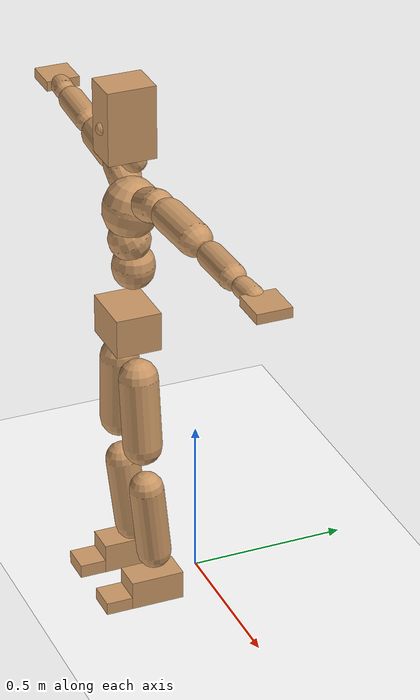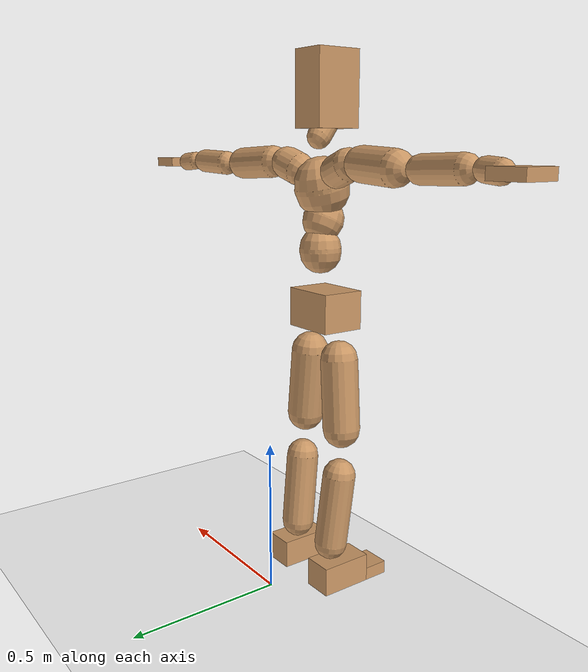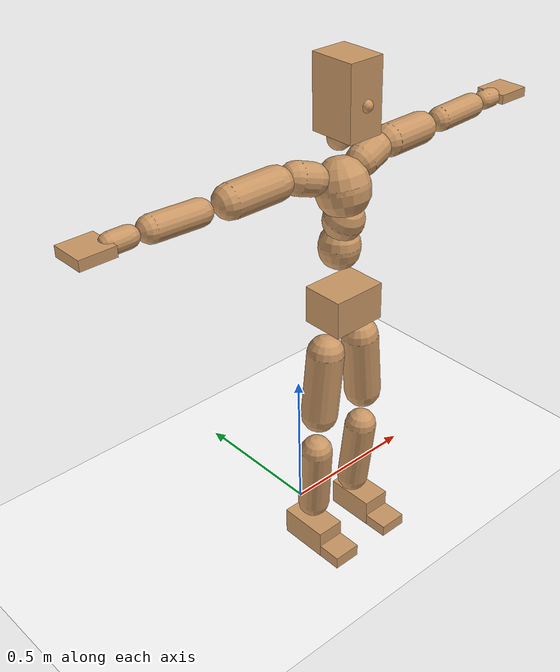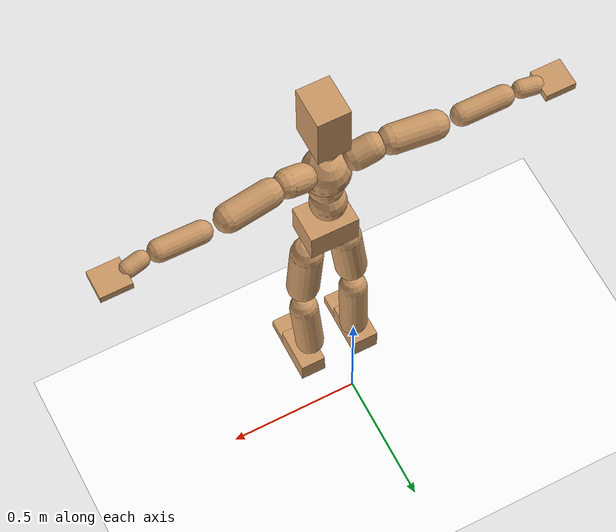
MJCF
<mujoco model="humanoid">
  <option integrator="implicitfast" />

  <visual>
    <global offwidth="1280" offheight="960" />
    <headlight active="1" ambient="0.34 0.34 0.34" diffuse="0.5 0.5 0.5" />
  </visual>

  <default>
    <joint damping="2" stiffness="2" armature="0.01" limited="true" solimplimit="0 .99 .01" />
    <geom condim="1" friction="0.7 0.005 0.0001" solimp=".99 .99 .003" solref="0.015 1" margin="0.001" rgba="0.8 0.6 .4 1" />
    <default class="smplcontact">
      <geom condim="3" friction="1. 0.005 0.0001" solref="0.015 1" solimp="0.98 0.98 0.001" priority="1" />
    </default>
    <default class="stiff_medium">
      <joint stiffness="10" />
    </default>
    <default class="stiff_medium_higher">
      <joint stiffness="50" />
    </default>
    <default class="stiff_high">
      <joint stiffness="100" />
    </default>
  </default>

  <asset>
    <texture type="skybox" builtin="gradient" rgb1="0.99 0.99 0.99" rgb2="0.608 0.828 0.892" width="100" />
    <texture builtin="flat" height="1278" mark="cross" markrgb="1 1 1" name="texgeom" random="0.01" rgb1="0.8 0.6 0.4" rgb2="0.8 0.6 0.4" type="cube" width="127" />
    <texture name="texplane" type="2d" builtin="checker" markrgb="1 1 1" rgb1="0.756 0.772 0.76" rgb2="0.6 0.6 0.6" width="100" height="100" />
    <material name="MatPlane" reflectance="0.5" texture="texplane" texrepeat="1 1" texuniform="true" />
    <material name="geom" texture="texgeom" texuniform="true" />
  </asset>

  <worldbody>
    <light name="tracking_light" pos="0 0 7" dir="0 0 -1" directional="true" cutoff="100" exponent="1" diffuse="1 1 1" specular="0.1 0.1 0.1" mode="trackcom" />
    <camera name="back" pos="0 3 2.4" xyaxes="-1 0 0 0 -1 2" mode="trackcom" />
    <camera name="side" pos="-3 0 2.4" xyaxes="0 -1 0 1 0 2" mode="trackcom" />
    <camera name="front_side" pos="-2.8 -2.8 0.8" xyaxes="0.5 -0.5 0 0.1 0.1 1" mode="trackcom" />
    <geom condim="3" name="floor" pos="0 0 0" rgba="1 1 1 1" size="100 100 .2" type="plane" material="MatPlane" />
    <body name="Pelvis" pos="-0.0018 -0.2233 0.9367" euler="90 0 0">
      <site name="Pelvis" size="0.01" />
      <freejoint name="Pelvis" />
      <geom type="box" pos="-0.0000 -0.0121 -0.0055" size="0.0924685 0.062453 0.071795" quat="1.0000 0.0000 0.0000 0.0000" density="3165.830099" name="Pelvis" />
      <body name="L_Hip" pos="0.0695 -0.0914 -0.0068">
        <joint name="L_Hip_x" type="hinge" pos="0 0 0" axis="1 0 0" stiffness="10.0" range="-160.0 22.92" class="stiff_medium" damping="14.999999999999998" armature="0.009999999999999998"/>
        <joint name="L_Hip_y" type="hinge" pos="0 0 0" axis="0 1 0" stiffness="10.0" range="-70.0 70.0" class="stiff_medium" damping="10.000000000000002" armature="0.010000000000000005"/>
        <joint name="L_Hip_z" type="hinge" pos="0 0 0" axis="0 0 1" stiffness="10.0" range="-28.65 90.0" class="stiff_medium" damping="9.999999999999998" armature="0.009999999999999997"/>
        <geom type="capsule" density="2040.816327" fromto="0.0069 -0.075 -0.0009 0.0274 -0.3002 -0.0036" size="0.0615" name="L_Hip" />
        <body name="L_Knee" pos="0.0343 -0.3752 -0.0045">
          <joint name="L_Knee_x" type="hinge" pos="0 0 0" axis="1 0 0" range="-5.16 171.89" damping="8.000000000000002" armature="0.010000000000000005" stiffness="2.0"/>
          <joint name="L_Knee_y" type="hinge" pos="0 0 0" axis="0 1 0" range="-4.58 6.88" damping="8.000000000000002" armature="0.010000000000000005" stiffness="2.0"/>
          <joint name="L_Knee_z" type="hinge" pos="0 0 0" axis="0 0 1" range="-6.88 4.58" damping="7.999999999999999" armature="0.009999999999999998" stiffness="2.0"/>
          <geom type="capsule" density="1234.567901" fromto="-0.0027 -0.0796 -0.0087 -0.0109 -0.3184 -0.035" size="0.0541" name="L_Knee" />
          <body name="L_Ankle" pos="-0.0136 -0.398 -0.0437">
            <joint name="L_Ankle_x" type="hinge" pos="0 0 0" axis="1 0 0" range="-45.84 45.84" class="stiff_medium" damping="6.000000000000072" armature="0.01000000000000024" stiffness="10.0"/>
            <joint name="L_Ankle_y" type="hinge" pos="0 0 0" axis="0 1 0" range="-74.48 22.92" class="stiff_medium" damping="3.000000000000001" armature="0.010000000000000005" stiffness="10.0"/>
            <joint name="L_Ankle_z" type="hinge" pos="0 0 0" axis="0 0 1" range="-4.58 4.58" class="stiff_medium" damping="6.000000000000163" armature="0.010000000000000547" stiffness="10.0"/>
            <geom type="box" pos="0.0233 -0.0239 0.0242" size="0.0483 0.0464 0.085" quat="1.0000 0.0000 0.0000 0.0000" density="449.071558" name="L_Ankle" class="smplcontact" />
            <body name="L_Toe" pos="0.0264 -0.0558 0.1193">
              <joint name="L_Toe_x" type="hinge" pos="0 0 0" axis="1 0 0" range="-91.67 22.92" armature="0.009999999999998635" damping="1.9999999999998634" stiffness="2.0"/>
              <joint name="L_Toe_y" type="hinge" pos="0 0 0" axis="0 1 0" range="-4.58 4.58" armature="0.009999999999999976" damping="1.9999999999999976" stiffness="2.0"/>
              <joint name="L_Toe_z" type="hinge" pos="0 0 0" axis="0 0 1" range="-4.58 4.58" armature="0.009999999999997629" damping="1.9999999999997629" stiffness="2.0"/>
              <geom type="box" pos="-0.003 0.0055 0.0248" size="0.0478 0.02 0.0496" quat="1.0000 0.0000 0.0000 0.0000" density="423.206892" name="L_Toe" class="smplcontact" />
            </body>
          </body>
        </body>
      </body>
      <body name="R_Hip" pos="-0.0677 -0.0905 -0.0043">
        <joint name="R_Hip_x" type="hinge" pos="0 0 0" axis="1 0 0" stiffness="10.0" range="-160.0 22.92" class="stiff_medium" damping="14.999999999999998" armature="0.009999999999999998"/>
        <joint name="R_Hip_y" type="hinge" pos="0 0 0" axis="0 1 0" stiffness="10.0" range="-70.0 70.0" class="stiff_medium" damping="10.000000000000002" armature="0.010000000000000005"/>
        <joint name="R_Hip_z" type="hinge" pos="0 0 0" axis="0 0 1" stiffness="10.0" range="-90.0 28.65" class="stiff_medium" damping="9.999999999999998" armature="0.009999999999999997"/>
        <geom type="capsule" density="2040.816327" fromto="-0.0077 -0.0765 -0.0018 -0.0306 -0.3061 -0.0071" size="0.0606" name="R_Hip" />
        <body name="R_Knee" pos="-0.0383 -0.3826 -0.0089">
          <joint name="R_Knee_x" type="hinge" pos="0 0 0" axis="1 0 0" range="-5.16 171.89" damping="8.000000000000002" armature="0.010000000000000005" stiffness="2.0"/>
          <joint name="R_Knee_y" type="hinge" pos="0 0 0" axis="0 1 0" range="-6.88 4.58" damping="8.000000000000002" armature="0.010000000000000005" stiffness="2.0"/>
          <joint name="R_Knee_z" type="hinge" pos="0 0 0" axis="0 0 1" range="-4.58 6.88" damping="7.999999999999999" armature="0.009999999999999998" stiffness="2.0"/>
          <geom type="capsule" density="1234.567901" fromto="0.0032 -0.0797 -0.0085 0.0126 -0.3187 -0.0338" size="0.0541" name="R_Knee" />
          <body name="R_Ankle" pos="0.0158 -0.3984 -0.0423">
            <joint name="R_Ankle_x" type="hinge" pos="0 0 0" axis="1 0 0" range="-45.84 45.84" class="stiff_medium" damping="6.000000000000072" armature="0.01000000000000024" stiffness="10.0"/>
            <joint name="R_Ankle_y" type="hinge" pos="0 0 0" axis="0 1 0" range="-22.92 74.48" class="stiff_medium" damping="3.000000000000001" armature="0.010000000000000005" stiffness="10.0"/>
            <joint name="R_Ankle_z" type="hinge" pos="0 0 0" axis="0 0 1" range="-4.58 4.58" class="stiff_medium" damping="6.000000000000163" armature="0.010000000000000547" stiffness="10.0"/>
            <geom type="box" pos="-0.0212 -0.0174 0.0256" size="0.0483 0.0478 0.0865" quat="1.0000 0.0000 0.0000 0.0000" density="434.700981" name="R_Ankle" class="smplcontact" />
            <body name="R_Toe" pos="-0.0254 -0.0481 0.1233">
              <joint name="R_Toe_x" type="hinge" pos="0 0 0" axis="1 0 0" range="-91.67 22.92" armature="0.009999999999998635" damping="1.9999999999998634" stiffness="2.0"/>
              <joint name="R_Toe_y" type="hinge" pos="0 0 0" axis="0 1 0" range="-4.58 4.58" armature="0.009999999999999976" damping="1.9999999999999976" stiffness="2.0"/>
              <joint name="R_Toe_z" type="hinge" pos="0 0 0" axis="0 0 1" range="-4.58 4.58" armature="0.009999999999997629" damping="1.9999999999997629" stiffness="2.0"/>
              <geom type="box" pos="0.0042 0.0045 0.0227" size="0.0479 0.0216 0.0493" quat="1.0000 0.0000 0.0000 0.0000" density="407.384095" name="R_Toe" class="smplcontact" />
            </body>
          </body>
        </body>
      </body>
      <body name="Torso" pos="-0.0025 0.109 -0.0267">
        <joint name="Torso_x" type="hinge" pos="0 0 0" axis="1 0 0" range="-25.78 57.3" class="stiff_medium" damping="13.215959636474029" armature="0.008983373766355034" stiffness="8.64122711111111"/>
        <joint name="Torso_y" type="hinge" pos="0 0 0" axis="0 1 0" range="-57.3 57.3" class="stiff_high" damping="18.33844823546142" armature="0.009818205557698583" stiffness="85.63140222222223"/>
        <joint name="Torso_z" type="hinge" pos="0 0 0" axis="0 0 1" range="-34.38 34.38" class="stiff_high" damping="17.620277561194307" armature="0.009311548997657189" stiffness="83.35728604651163"/>
        <geom type="capsule" density="2040.816327" fromto="0.0025 0.0608 0.0005 0.003 0.0743 0.0006" size="0.0665185" name="Torso" />
        <body name="Spine" pos="0.0055 0.1352 0.0011">
          <joint name="Spine_x" type="hinge" pos="0 0 0" axis="1 0 0" stiffness="8.874952666666667" range="-25.78 57.3" class="stiff_medium" damping="13.629979113894215" armature="0.009303402639502906"/>
          <joint name="Spine_y" type="hinge" pos="0 0 0" axis="0 1 0" stiffness="8.984592325581392" range="-57.3 57.3" class="stiff_high" damping="7.52608752712478" armature="0.00985054319476974"/>
          <joint name="Spine_z" type="hinge" pos="0 0 0" axis="0 0 1" stiffness="17.941796888888888" range="-34.38 34.38" class="stiff_high" damping="11.177653632307631" armature="0.009671701029969922"/>
          <geom type="capsule" density="2040.816327" fromto="0.0007 0.0238 0.0114 0.0008 0.0291 0.014" size="0.0653075" name="Spine" />
          <body name="Chest" pos="0.0015 0.0529 0.0254">
            <joint name="Chest_x" type="hinge" pos="0 0 0" axis="1 0 0" stiffness="9.186817272727271" range="-25.78 57.3" class="stiff_medium" damping="13.976137000990189" armature="0.009449888884699387"/>
            <joint name="Chest_y" type="hinge" pos="0 0 0" axis="0 1 0" stiffness="9.537848604651163" range="-57.3 57.3" class="stiff_high" damping="7.763311807344759" armature="0.00987333017844234"/>
            <joint name="Chest_z" type="hinge" pos="0 0 0" axis="0 0 1" stiffness="18.21724088888889" range="-34.38 34.38" class="stiff_high" damping="11.334277405766889" armature="0.009794281409207987"/>
            <geom type="capsule" density="2040.816327" fromto="-0.0009 0.0682 -0.0173 -0.001 0.0833 -0.0212" size="0.086673" name="Chest" />
            <body name="Neck" pos="-0.0028 0.2139 -0.0429">
              <joint name="Neck_x" type="hinge" pos="0 0 0" axis="1 0 0" range="-28.65 57.3" class="stiff_medium_higher" damping="9.853799920320666" armature="0.009945182634722395" stiffness="48.81628444444445"/>
              <joint name="Neck_y" type="hinge" pos="0 0 0" axis="0 1 0" range="-40.11 40.11" class="stiff_medium_higher" damping="9.801743754504065" armature="0.009790933001361076" stiffness="49.06283222222222"/>
              <joint name="Neck_z" type="hinge" pos="0 0 0" axis="0 0 1" range="-40.11 40.11" class="stiff_medium_higher" damping="9.931354538124154" armature="0.009955437333965785" stiffness="49.53664999999999"/>
              <geom type="capsule" density="1000" fromto="0.001 0.013 0.0103 0.0041 0.052 0.0411" size="0.037714" name="Neck" />
              <body name="Head" pos="0.0052 0.065 0.0513">
                <joint name="Head_x" type="hinge" pos="0 0 0" axis="1 0 0" range="-28.65 57.3" class="stiff_medium_higher" damping="2.000000000000008" armature="0.010000000000000082" stiffness="50.0"/>
                <joint name="Head_y" type="hinge" pos="0 0 0" axis="0 1 0" range="-40.11 40.11" class="stiff_medium_higher" damping="2.0" armature="0.01" stiffness="50.0"/>
                <joint name="Head_z" type="hinge" pos="0 0 0" axis="0 0 1" range="-40.11 40.11" class="stiff_medium_higher" damping="2.000000000000004" armature="0.01000000000000004" stiffness="50.0"/>
                <geom type="box" pos="-0.0042 0.0876 -0.0116" size="0.0606 0.1154 0.076" quat="1.0000 0.0000 0.0000 0.0000" density="1018.069894" name="Head" />
                <geom type="capsule" name="nose" size="0.02 0.01" pos="0 0.07 0.05" quat="1 0 0 0" mass="0" contype="0" conaffinity="0" />
              </body>
            </body>
            <body name="L_Thorax" pos="0.0788 0.1217 -0.0341">
              <joint name="L_Thorax_x" type="hinge" pos="0 0 0" axis="1 0 0" range="-10.89 4.58" class="stiff_medium_higher" damping="20.00000000000022" armature="0.010000000000000224" stiffness="50.0"/>
              <joint name="L_Thorax_y" type="hinge" pos="0 0 0" axis="0 1 0" range="-28.65 17.19" class="stiff_medium_higher" damping="20.0" armature="0.01" stiffness="50.0"/>
              <joint name="L_Thorax_z" type="hinge" pos="0 0 0" axis="0 0 1" range="-31.51 40.11" class="stiff_medium_higher" damping="20.0" armature="0.01" stiffness="50.0"/>
              <geom type="capsule" density="1000" fromto="0.0182 0.0061 -0.0018 0.0728 0.0244 -0.0071" size="0.0521" name="L_Thorax" />
              <body name="L_Shoulder" pos="0.091 0.0305 -0.0089">
                <joint name="L_Shoulder_x" type="hinge" pos="0 0 0" axis="1 0 0" range="-97.4 97.4" class="stiff_medium" damping="6.000000000000043" armature="0.010000000000000142" stiffness="10.0"/>
                <joint name="L_Shoulder_y" type="hinge" pos="0 0 0" axis="0 1 0" range="-108.86 80.21" class="stiff_medium" damping="6.0" armature="0.01" stiffness="10.0"/>
                <joint name="L_Shoulder_z" type="hinge" pos="0 0 0" axis="0 0 1" range="-97.4 85.94" class="stiff_medium" damping="6.0" armature="0.01" stiffness="10.0"/>
                <geom type="capsule" density="1000" fromto="0.0519 -0.0026 -0.0055 0.2077 -0.0102 -0.022" size="0.0517" name="L_Shoulder" />
                <body name="L_Elbow" pos="0.2596 -0.0128 -0.0275">
                  <joint name="L_Elbow_x" type="hinge" pos="0 0 0" axis="1 0 0" range="-17.19 4.58" damping="4.999999999999899" armature="0.009999999999999594" stiffness="2.0"/>
                  <joint name="L_Elbow_y" type="hinge" pos="0 0 0" axis="0 1 0" range="-180.0 17.19" damping="5.000000000000002" armature="0.010000000000000009" stiffness="2.0"/>
                  <joint name="L_Elbow_z" type="hinge" pos="0 0 0" axis="0 0 1" range="-100.84 4.58" damping="5.0" armature="0.010000000000000002" stiffness="2.0"/>
                  <geom type="capsule" density="1000" fromto="0.0498 0.0018 -0.0002 0.1994 0.0072 -0.0009" size="0.0405" name="L_Elbow" />
                  <body name="L_Wrist" pos="0.2492 0.009 -0.0012">
                    <joint name="L_Wrist_x" type="hinge" pos="0 0 0" axis="1 0 0" range="-180.0 22.92" armature="0.009999999999999405" damping="1.9999999999999405" stiffness="2.0"/>
                    <joint name="L_Wrist_y" type="hinge" pos="0 0 0" axis="0 1 0" range="-17.19 17.19" armature="0.009999999999999856" damping="1.9999999999999856" stiffness="2.0"/>
                    <joint name="L_Wrist_z" type="hinge" pos="0 0 0" axis="0 0 1" range="-22.92 22.92" armature="0.009999999999999934" damping="1.9999999999999933" stiffness="2.0"/>
                    <geom type="capsule" density="1000" fromto="0.0168 -0.0016 -0.003 0.0672 -0.0065 -0.012" size="0.0318" name="L_Wrist" class="smplcontact" />
                    <body name="L_Hand" pos="0.084 -0.0082 -0.0149">
                      <joint name="L_Hand_x" type="hinge" pos="0 0 0" axis="1 0 0" range="-17.19 17.19" armature="0.009999999999999763" damping="1.9999999999999762" stiffness="2.0"/>
                      <joint name="L_Hand_y" type="hinge" pos="0 0 0" axis="0 1 0" range="-51.57 51.57" armature="0.010000000000000227" damping="2.0000000000000226" stiffness="2.0"/>
                      <joint name="L_Hand_z" type="hinge" pos="0 0 0" axis="0 0 1" range="-91.67 91.67" armature="0.010000000000000349" damping="2.0000000000000346" stiffness="2.0"/>
                      <geom type="box" pos="0.0493 0.001 -0.0058" size="0.0585 0.0158 0.0538" quat="1.0000 0.0000 0.0000 0.0000" density="400.552564" name="L_Hand" class="smplcontact" />
                    </body>
                  </body>
                </body>
              </body>
            </body>
            <body name="R_Thorax" pos="-0.0818 0.1188 -0.0386">
              <joint name="R_Thorax_x" type="hinge" pos="0 0 0" axis="1 0 0" range="-10.89 4.58" class="stiff_medium_higher" damping="20.00000000000022" armature="0.010000000000000224" stiffness="50.0"/>
              <joint name="R_Thorax_y" type="hinge" pos="0 0 0" axis="0 1 0" range="-17.19 28.65" class="stiff_medium_higher" damping="20.0" armature="0.01" stiffness="50.0"/>
              <joint name="R_Thorax_z" type="hinge" pos="0 0 0" axis="0 0 1" range="-40.11 31.51" class="stiff_medium_higher" damping="20.0" armature="0.01" stiffness="50.0"/>
              <geom type="capsule" density="1000" fromto="-0.0192 0.0065 -0.0018 -0.0768 0.026 -0.0073" size="0.0511" name="R_Thorax" />
              <body name="R_Shoulder" pos="-0.096 0.0326 -0.0091">
                <joint name="R_Shoulder_x" type="hinge" pos="0 0 0" axis="1 0 0" range="-97.4 97.4" class="stiff_medium" damping="6.000000000000043" armature="0.010000000000000142" stiffness="10.0"/>
                <joint name="R_Shoulder_y" type="hinge" pos="0 0 0" axis="0 1 0" range="-80.21 108.86" class="stiff_medium" damping="6.0" armature="0.01" stiffness="10.0"/>
                <joint name="R_Shoulder_z" type="hinge" pos="0 0 0" axis="0 0 1" range="-85.94 97.4" class="stiff_medium" damping="6.0" armature="0.01" stiffness="10.0"/>
                <geom type="capsule" density="1000" fromto="-0.0507 -0.0027 -0.0043 -0.203 -0.0107 -0.0171" size="0.0531" name="R_Shoulder" />
                <body name="R_Elbow" pos="-0.2537 -0.0133 -0.0214">
                  <joint name="R_Elbow_x" type="hinge" pos="0 0 0" axis="1 0 0" range="-17.19 4.58" damping="4.999999999999899" armature="0.009999999999999594" stiffness="2.0"/>
                  <joint name="R_Elbow_y" type="hinge" pos="0 0 0" axis="0 1 0" range="-17.19 180.0" damping="5.000000000000002" armature="0.010000000000000009" stiffness="2.0"/>
                  <joint name="R_Elbow_z" type="hinge" pos="0 0 0" axis="0 0 1" range="-4.58 100.84" damping="5.0" armature="0.010000000000000002" stiffness="2.0"/>
                  <geom type="capsule" density="1000" fromto="-0.0511 0.0016 -0.0011 -0.2042 0.0062 -0.0044" size="0.0408" name="R_Elbow" />
                  <body name="R_Wrist" pos="-0.2553 0.0078 -0.0056">
                    <joint name="R_Wrist_x" type="hinge" pos="0 0 0" axis="1 0 0" range="-180.0 22.92" armature="0.009999999999999405" damping="1.9999999999999405" stiffness="2.0"/>
                    <joint name="R_Wrist_y" type="hinge" pos="0 0 0" axis="0 1 0" range="-17.19 17.19" armature="0.009999999999999856" damping="1.9999999999999856" stiffness="2.0"/>
                    <joint name="R_Wrist_z" type="hinge" pos="0 0 0" axis="0 0 1" range="-22.92 22.92" armature="0.009999999999999934" damping="1.9999999999999933" stiffness="2.0"/>
                    <geom type="capsule" density="1000" fromto="-0.0169 -0.0012 -0.0021 -0.0677 -0.0049 -0.0083" size="0.0326" name="R_Wrist" class="smplcontact" />
                    <body name="R_Hand" pos="-0.0846 -0.0061 -0.0103">
                      <joint name="R_Hand_x" type="hinge" pos="0 0 0" axis="1 0 0" range="-17.19 17.19" armature="0.009999999999999763" damping="1.9999999999999762" stiffness="2.0"/>
                      <joint name="R_Hand_y" type="hinge" pos="0 0 0" axis="0 1 0" range="-51.57 51.57" armature="0.010000000000000227" damping="2.0000000000000226" stiffness="2.0"/>
                      <joint name="R_Hand_z" type="hinge" pos="0 0 0" axis="0 0 1" range="-91.67 91.67" armature="0.010000000000000349" damping="2.0000000000000346" stiffness="2.0"/>
                      <geom type="box" pos="-0.0462 -0.0009 -0.0079" size="0.0569 0.0164 0.0546" quat="1.0000 0.0000 0.0000 0.0000" density="403.679611" name="R_Hand" class="smplcontact" />
                    </body>
                  </body>
                </body>
              </body>
            </body>
          </body>
        </body>
      </body>
    </body>
  </worldbody>
  <actuator>
    <general name="L_Hip_x" joint="L_Hip_x" biastype="affine" gainprm="287.33006409732246" biasprm="-215.3247604770444 -180.0 -1.9999999999999998" ctrllimited="true" ctrlrange="-1 1" forcerange="-360.0 360.0" />
    <general name="L_Hip_y" joint="L_Hip_y" biastype="affine" gainprm="219.9114857512855" biasprm="0.0 -180.0 -2.0000000000000004" ctrllimited="true" ctrlrange="-1 1" forcerange="-360.0 360.0" />
    <general name="L_Hip_z" joint="L_Hip_z" biastype="affine" gainprm="186.3749841742145" biasprm="96.3683546488669 -180.0 -1.9999999999999996" ctrllimited="true" ctrlrange="-1 1" forcerange="-360.0 360.0" />
    <general name="L_Knee_x" joint="L_Knee_x" biastype="affine" gainprm="278.10948965903646" biasprm="261.8988715665131 -180.0 -2.0000000000000004" ctrllimited="true" ctrlrange="-1 1" forcerange="-360.0 360.0" />
    <general name="L_Knee_y" joint="L_Knee_y" biastype="affine" gainprm="18.001325905069514" biasprm="3.612831551628262 -180.0 -2.0000000000000004" ctrllimited="true" ctrlrange="-1 1" forcerange="-360.0 360.0" />
    <general name="L_Knee_z" joint="L_Knee_z" biastype="affine" gainprm="18.001325905069514" biasprm="-3.612831551628262 -180.0 -1.9999999999999998" ctrllimited="true" ctrlrange="-1 1" forcerange="-360.0 360.0" />
    <general name="L_Ankle_x" joint="L_Ankle_x" biastype="affine" gainprm="72.00530362027807" biasprm="0.0 -90.0 -2.000000000000024" ctrllimited="true" ctrlrange="-1 1" forcerange="-180.0 180.0" />
    <general name="L_Ankle_y" joint="L_Ankle_y" biastype="affine" gainprm="76.49778111491148" biasprm="-40.49512930477244 -90.0 -2.0000000000000004" ctrllimited="true" ctrlrange="-1 1" forcerange="-180.0 180.0" />
    <general name="L_Ankle_z" joint="L_Ankle_z" biastype="affine" gainprm="7.1942471767206255" biasprm="0.0 -90.0 -2.0000000000000546" ctrllimited="true" ctrlrange="-1 1" forcerange="-180.0 180.0" />
    <general name="L_Toe_x" joint="L_Toe_x" biastype="affine" gainprm="71.99902043497087" biasprm="-43.19689898685965 -72.0 -0.7999999999999454" ctrllimited="true" ctrlrange="-1 1" forcerange="-144.0 144.0" />
    <general name="L_Toe_y" joint="L_Toe_y" biastype="affine" gainprm="5.755397741376501" biasprm="0.0 -72.0 -0.799999999999999" ctrllimited="true" ctrlrange="-1 1" forcerange="-144.0 144.0" />
    <general name="L_Toe_z" joint="L_Toe_z" biastype="affine" gainprm="5.755397741376501" biasprm="0.0 -72.0 -0.7999999999999052" ctrllimited="true" ctrlrange="-1 1" forcerange="-144.0 144.0" />
    <general name="R_Hip_x" joint="R_Hip_x" biastype="affine" gainprm="287.33006409732246" biasprm="-215.3247604770444 -180.0 -1.9999999999999998" ctrllimited="true" ctrlrange="-1 1" forcerange="-360.0 360.0" />
    <general name="R_Hip_y" joint="R_Hip_y" biastype="affine" gainprm="219.9114857512855" biasprm="0.0 -180.0 -2.0000000000000004" ctrllimited="true" ctrlrange="-1 1" forcerange="-360.0 360.0" />
    <general name="R_Hip_z" joint="R_Hip_z" biastype="affine" gainprm="186.3749841742145" biasprm="-96.3683546488669 -180.0 -1.9999999999999996" ctrllimited="true" ctrlrange="-1 1" forcerange="-360.0 360.0" />
    <general name="R_Knee_x" joint="R_Knee_x" biastype="affine" gainprm="278.10948965903646" biasprm="261.8988715665131 -180.0 -2.0000000000000004" ctrllimited="true" ctrlrange="-1 1" forcerange="-360.0 360.0" />
    <general name="R_Knee_y" joint="R_Knee_y" biastype="affine" gainprm="18.001325905069514" biasprm="-3.612831551628262 -180.0 -2.0000000000000004" ctrllimited="true" ctrlrange="-1 1" forcerange="-360.0 360.0" />
    <general name="R_Knee_z" joint="R_Knee_z" biastype="affine" gainprm="18.001325905069514" biasprm="3.612831551628262 -180.0 -1.9999999999999998" ctrllimited="true" ctrlrange="-1 1" forcerange="-360.0 360.0" />
    <general name="R_Ankle_x" joint="R_Ankle_x" biastype="affine" gainprm="72.00530362027807" biasprm="0.0 -90.0 -2.000000000000024" ctrllimited="true" ctrlrange="-1 1" forcerange="-180.0 180.0" />
    <general name="R_Ankle_y" joint="R_Ankle_y" biastype="affine" gainprm="76.49778111491148" biasprm="40.49512930477244 -90.0 -2.0000000000000004" ctrllimited="true" ctrlrange="-1 1" forcerange="-180.0 180.0" />
    <general name="R_Ankle_z" joint="R_Ankle_z" biastype="affine" gainprm="7.1942471767206255" biasprm="0.0 -90.0 -2.0000000000000546" ctrllimited="true" ctrlrange="-1 1" forcerange="-180.0 180.0" />
    <general name="R_Toe_x" joint="R_Toe_x" biastype="affine" gainprm="71.99902043497087" biasprm="-43.19689898685965 -72.0 -0.7999999999999454" ctrllimited="true" ctrlrange="-1 1" forcerange="-144.0 144.0" />
    <general name="R_Toe_y" joint="R_Toe_y" biastype="affine" gainprm="5.755397741376501" biasprm="0.0 -72.0 -0.799999999999999" ctrllimited="true" ctrlrange="-1 1" forcerange="-144.0 144.0" />
    <general name="R_Toe_z" joint="R_Toe_z" biastype="affine" gainprm="5.755397741376501" biasprm="0.0 -72.0 -0.7999999999999052" ctrllimited="true" ctrlrange="-1 1" forcerange="-144.0 144.0" />
    <general name="Torso_x" joint="Torso_x" biastype="affine" gainprm="150.35937819340222" biasprm="57.04534906904233 -207.38945066666662 -3.524255903059741" ctrllimited="true" ctrlrange="-1 1" forcerange="-311.08417599999996 311.08417599999996" />
    <general name="Torso_y" joint="Torso_y" biastype="affine" gainprm="205.53050388137552" biasprm="0.0 -205.5153653333334 -3.667689647092284" ctrllimited="true" ctrlrange="-1 1" forcerange="-308.2730480000001 308.2730480000001" />
    <general name="Torso_z" joint="Torso_z" biastype="affine" gainprm="120.04333381482878" biasprm="0.0 -200.05748651162793 -3.5240555122388613" ctrllimited="true" ctrlrange="-1 1" forcerange="-300.08622976744186 300.08622976744186" />
    <general name="Spine_x" joint="Spine_x" biastype="affine" gainprm="154.42625767120853" biasprm="58.588296121768074 -212.99886400000003 -3.6346610970384576" ctrllimited="true" ctrlrange="-1 1" forcerange="-319.49829600000004 319.49829600000004" />
    <general name="Spine_y" joint="Spine_y" biastype="affine" gainprm="215.64609943596943" biasprm="0.0 -215.63021581395344 -3.76304376356239" ctrllimited="true" ctrlrange="-1 1" forcerange="-323.44532372093016 323.44532372093016" />
    <general name="Spine_z" joint="Spine_z" biastype="affine" gainprm="129.19045324778048" biasprm="0.0 -215.30156266666665 -3.725884544102544" ctrllimited="true" ctrlrange="-1 1" forcerange="-322.952344 322.952344" />
    <general name="Chest_x" joint="Chest_x" biastype="affine" gainprm="159.85277495224472" biasprm="60.64708072333597 -220.48361454545454 -3.726969866930717" ctrllimited="true" ctrlrange="-1 1" forcerange="-330.7254218181818 330.7254218181818" />
    <general name="Chest_y" joint="Chest_y" biastype="affine" gainprm="228.92522822071746" biasprm="0.0 -228.9083665116279 -3.8816559036723794" ctrllimited="true" ctrlrange="-1 1" forcerange="-343.36254976744186 343.36254976744186" />
    <general name="Chest_z" joint="Chest_z" biastype="affine" gainprm="131.1737961328189" biasprm="0.0 -218.6068906666667 -3.7780924685889627" ctrllimited="true" ctrlrange="-1 1" forcerange="-327.91033600000003 327.91033600000003" />
    <general name="Neck_x" joint="Neck_x" biastype="affine" gainprm="26.362735372770594" biasprm="8.787578457590199 -35.1477248 -0.7883039936256533" ctrllimited="true" ctrlrange="-1 1" forcerange="-70.2954496 70.2954496" />
    <general name="Neck_y" joint="Neck_y" biastype="affine" gainprm="24.729488914423108" biasprm="0.0 -35.3252392 -0.7841395003603252" ctrllimited="true" ctrlrange="-1 1" forcerange="-70.6504784 70.6504784" />
    <general name="Neck_z" joint="Neck_z" biastype="affine" gainprm="24.968310665070124" biasprm="0.0 -35.66638799999999 -0.7945083630499323" ctrllimited="true" ctrlrange="-1 1" forcerange="-71.33277599999998 71.33277599999998" />
    <general name="Head_x" joint="Head_x" biastype="affine" gainprm="18.001325905069514" biasprm="6.000441968356505 -24.0 -0.8000000000000033" ctrllimited="true" ctrlrange="-1 1" forcerange="-48.0 48.0" />
    <general name="Head_y" joint="Head_y" biastype="affine" gainprm="16.801237511398213" biasprm="0.0 -24.0 -0.8" ctrllimited="true" ctrlrange="-1 1" forcerange="-48.0 48.0" />
    <general name="Head_z" joint="Head_z" biastype="affine" gainprm="16.801237511398213" biasprm="0.0 -24.0 -0.8000000000000016" ctrllimited="true" ctrlrange="-1 1" forcerange="-48.0 48.0" />
    <general name="L_Thorax_x" joint="L_Thorax_x" biastype="affine" gainprm="16.200146117011364" biasprm="-6.6078165480505335 -120.0 -1.6000000000000179" ctrllimited="true" ctrlrange="-1 1" forcerange="-240.0 240.0" />
    <general name="L_Thorax_y" joint="L_Thorax_y" biastype="affine" gainprm="48.00353574685204" biasprm="-12.00088393671301 -120.0 -1.6" ctrllimited="true" ctrlrange="-1 1" forcerange="-240.0 240.0" />
    <general name="L_Thorax_z" joint="L_Thorax_z" biastype="affine" gainprm="75.00028861670033" biasprm="9.00589894029074 -120.0 -1.6" ctrllimited="true" ctrlrange="-1 1" forcerange="-240.0 240.0" />
    <general name="L_Shoulder_x" joint="L_Shoulder_x" biastype="affine" gainprm="81.5976331892389" biasprm="0.0 -48.0 -1.6000000000000114" ctrllimited="true" ctrlrange="-1 1" forcerange="-96.0 96.0" />
    <general name="L_Shoulder_y" joint="L_Shoulder_y" biastype="affine" gainprm="79.19745640189629" biasprm="-12.00088393671301 -48.0 -1.6" ctrllimited="true" ctrlrange="-1 1" forcerange="-96.0 96.0" />
    <general name="L_Shoulder_z" joint="L_Shoulder_z" biastype="affine" gainprm="76.79727961455369" biasprm="-4.800353574685214 -48.0 -1.6" ctrllimited="true" ctrlrange="-1 1" forcerange="-96.0 96.0" />
    <general name="L_Elbow_x" joint="L_Elbow_x" biastype="affine" gainprm="13.67849441372996" biasprm="-7.923096672353461 -72.0 -0.7999999999999838" ctrllimited="true" ctrlrange="-1 1" forcerange="-144.0 144.0" />
    <general name="L_Elbow_y" joint="L_Elbow_y" biastype="affine" gainprm="123.89813107227425" biasprm="-102.29653998619085 -72.0 -0.8000000000000004" ctrllimited="true" ctrlrange="-1 1" forcerange="-144.0 144.0" />
    <general name="L_Elbow_z" joint="L_Elbow_z" biastype="affine" gainprm="66.23733950828719" biasprm="-60.4819417669107 -72.0 -0.8" ctrllimited="true" ctrlrange="-1 1" forcerange="-144.0 144.0" />
    <general name="L_Wrist_x" joint="L_Wrist_x" biastype="affine" gainprm="21.24973270888136" biasprm="-16.449379134196157 -12.0 -0.7999999999999763" ctrllimited="true" ctrlrange="-1 1" forcerange="-24.0 24.0" />
    <general name="L_Wrist_y" joint="L_Wrist_y" biastype="affine" gainprm="3.6002651810139037" biasprm="0.0 -12.0 -0.7999999999999943" ctrllimited="true" ctrlrange="-1 1" forcerange="-24.0 24.0" />
    <general name="L_Wrist_z" joint="L_Wrist_z" biastype="affine" gainprm="4.800353574685205" biasprm="0.0 -12.0 -0.7999999999999974" ctrllimited="true" ctrlrange="-1 1" forcerange="-24.0 24.0" />
    <general name="L_Hand_x" joint="L_Hand_x" biastype="affine" gainprm="3.6002651810139037" biasprm="0.0 -12.0 -0.7999999999999905" ctrllimited="true" ctrlrange="-1 1" forcerange="-24.0 24.0" />
    <general name="L_Hand_y" joint="L_Hand_y" biastype="affine" gainprm="10.800795543041708" biasprm="0.0 -12.0 -0.8000000000000091" ctrllimited="true" ctrlrange="-1 1" forcerange="-24.0 24.0" />
    <general name="L_Hand_z" joint="L_Hand_z" biastype="affine" gainprm="19.199319903638422" biasprm="0.0 -12.0 -0.8000000000000139" ctrllimited="true" ctrlrange="-1 1" forcerange="-24.0 24.0" />
    <general name="R_Thorax_x" joint="R_Thorax_x" biastype="affine" gainprm="16.200146117011364" biasprm="-6.6078165480505335 -120.0 -1.6000000000000179" ctrllimited="true" ctrlrange="-1 1" forcerange="-240.0 240.0" />
    <general name="R_Thorax_y" joint="R_Thorax_y" biastype="affine" gainprm="48.00353574685204" biasprm="12.000883936713002 -120.0 -1.6" ctrllimited="true" ctrlrange="-1 1" forcerange="-240.0 240.0" />
    <general name="R_Thorax_z" joint="R_Thorax_z" biastype="affine" gainprm="75.00028861670033" biasprm="-9.00589894029074 -120.0 -1.6" ctrllimited="true" ctrlrange="-1 1" forcerange="-240.0 240.0" />
    <general name="R_Shoulder_x" joint="R_Shoulder_x" biastype="affine" gainprm="81.5976331892389" biasprm="0.0 -48.0 -1.6000000000000114" ctrllimited="true" ctrlrange="-1 1" forcerange="-96.0 96.0" />
    <general name="R_Shoulder_y" joint="R_Shoulder_y" biastype="affine" gainprm="79.19745640189629" biasprm="12.00088393671301 -48.0 -1.6" ctrllimited="true" ctrlrange="-1 1" forcerange="-96.0 96.0" />
    <general name="R_Shoulder_z" joint="R_Shoulder_z" biastype="affine" gainprm="76.79727961455369" biasprm="4.800353574685204 -48.0 -1.6" ctrllimited="true" ctrlrange="-1 1" forcerange="-96.0 96.0" />
    <general name="R_Elbow_x" joint="R_Elbow_x" biastype="affine" gainprm="13.67849441372996" biasprm="-7.923096672353461 -72.0 -0.7999999999999838" ctrllimited="true" ctrlrange="-1 1" forcerange="-144.0 144.0" />
    <general name="R_Elbow_y" joint="R_Elbow_y" biastype="affine" gainprm="123.89813107227425" biasprm="102.29653998619085 -72.0 -0.8000000000000004" ctrllimited="true" ctrlrange="-1 1" forcerange="-144.0 144.0" />
    <general name="R_Elbow_z" joint="R_Elbow_z" biastype="affine" gainprm="66.23733950828719" biasprm="60.481941766910694 -72.0 -0.8" ctrllimited="true" ctrlrange="-1 1" forcerange="-144.0 144.0" />
    <general name="R_Wrist_x" joint="R_Wrist_x" biastype="affine" gainprm="21.24973270888136" biasprm="-16.449379134196157 -12.0 -0.7999999999999763" ctrllimited="true" ctrlrange="-1 1" forcerange="-24.0 24.0" />
    <general name="R_Wrist_y" joint="R_Wrist_y" biastype="affine" gainprm="3.6002651810139037" biasprm="0.0 -12.0 -0.7999999999999943" ctrllimited="true" ctrlrange="-1 1" forcerange="-24.0 24.0" />
    <general name="R_Wrist_z" joint="R_Wrist_z" biastype="affine" gainprm="4.800353574685205" biasprm="0.0 -12.0 -0.7999999999999974" ctrllimited="true" ctrlrange="-1 1" forcerange="-24.0 24.0" />
    <general name="R_Hand_x" joint="R_Hand_x" biastype="affine" gainprm="3.6002651810139037" biasprm="0.0 -12.0 -0.7999999999999905" ctrllimited="true" ctrlrange="-1 1" forcerange="-24.0 24.0" />
    <general name="R_Hand_y" joint="R_Hand_y" biastype="affine" gainprm="10.800795543041708" biasprm="0.0 -12.0 -0.8000000000000091" ctrllimited="true" ctrlrange="-1 1" forcerange="-24.0 24.0" />
    <general name="R_Hand_z" joint="R_Hand_z" biastype="affine" gainprm="19.199319903638422" biasprm="0.0 -12.0 -0.8000000000000139" ctrllimited="true" ctrlrange="-1 1" forcerange="-24.0 24.0" />
  </actuator>
  <contact>
    <exclude body1="Torso" body2="Chest" />
    <exclude body1="Head" body2="Chest" />
    <exclude body1="R_Knee" body2="R_Toe" />
    <exclude body1="R_Knee" body2="L_Ankle" />
    <exclude body1="R_Knee" body2="L_Toe" />
    <exclude body1="L_Knee" body2="L_Toe" />
    <exclude body1="L_Knee" body2="R_Ankle" />
    <exclude body1="L_Knee" body2="R_Toe" />
    <exclude body1="L_Shoulder" body2="Chest" />
    <exclude body1="R_Shoulder" body2="Chest" />
  </contact>
  <sensor>
    <framelinvel name="sensor_Pelvis_framelinvel" objtype="xbody" objname="Pelvis" />
    <framelinvel name="sensor_L_Hip_framelinvel" objtype="xbody" objname="L_Hip" />
    <framelinvel name="sensor_L_Knee_framelinvel" objtype="xbody" objname="L_Knee" />
    <framelinvel name="sensor_L_Ankle_framelinvel" objtype="xbody" objname="L_Ankle" />
    <framelinvel name="sensor_L_Toe_framelinvel" objtype="xbody" objname="L_Toe" />
    <framelinvel name="sensor_R_Hip_framelinvel" objtype="xbody" objname="R_Hip" />
    <framelinvel name="sensor_R_Knee_framelinvel" objtype="xbody" objname="R_Knee" />
    <framelinvel name="sensor_R_Ankle_framelinvel" objtype="xbody" objname="R_Ankle" />
    <framelinvel name="sensor_R_Toe_framelinvel" objtype="xbody" objname="R_Toe" />
    <framelinvel name="sensor_Torso_framelinvel" objtype="xbody" objname="Torso" />
    <framelinvel name="sensor_Spine_framelinvel" objtype="xbody" objname="Spine" />
    <framelinvel name="sensor_Chest_framelinvel" objtype="xbody" objname="Chest" />
    <framelinvel name="sensor_Neck_framelinvel" objtype="xbody" objname="Neck" />
    <framelinvel name="sensor_Head_framelinvel" objtype="xbody" objname="Head" />
    <framelinvel name="sensor_L_Thorax_framelinvel" objtype="xbody" objname="L_Thorax" />
    <framelinvel name="sensor_L_Shoulder_framelinvel" objtype="xbody" objname="L_Shoulder" />
    <framelinvel name="sensor_L_Elbow_framelinvel" objtype="xbody" objname="L_Elbow" />
    <framelinvel name="sensor_L_Wrist_framelinvel" objtype="xbody" objname="L_Wrist" />
    <framelinvel name="sensor_L_Hand_framelinvel" objtype="xbody" objname="L_Hand" />
    <framelinvel name="sensor_R_Thorax_framelinvel" objtype="xbody" objname="R_Thorax" />
    <framelinvel name="sensor_R_Shoulder_framelinvel" objtype="xbody" objname="R_Shoulder" />
    <framelinvel name="sensor_R_Elbow_framelinvel" objtype="xbody" objname="R_Elbow" />
    <framelinvel name="sensor_R_Wrist_framelinvel" objtype="xbody" objname="R_Wrist" />
    <framelinvel name="sensor_R_Hand_framelinvel" objtype="xbody" objname="R_Hand" />
    <frameangvel name="sensor_Pelvis_frameangvel" objtype="xbody" objname="Pelvis" />
    <frameangvel name="sensor_L_Hip_frameangvel" objtype="xbody" objname="L_Hip" />
    <frameangvel name="sensor_L_Knee_frameangvel" objtype="xbody" objname="L_Knee" />
    <frameangvel name="sensor_L_Ankle_frameangvel" objtype="xbody" objname="L_Ankle" />
    <frameangvel name="sensor_L_Toe_frameangvel" objtype="xbody" objname="L_Toe" />
    <frameangvel name="sensor_R_Hip_frameangvel" objtype="xbody" objname="R_Hip" />
    <frameangvel name="sensor_R_Knee_frameangvel" objtype="xbody" objname="R_Knee" />
    <frameangvel name="sensor_R_Ankle_frameangvel" objtype="xbody" objname="R_Ankle" />
    <frameangvel name="sensor_R_Toe_frameangvel" objtype="xbody" objname="R_Toe" />
    <frameangvel name="sensor_Torso_frameangvel" objtype="xbody" objname="Torso" />
    <frameangvel name="sensor_Spine_frameangvel" objtype="xbody" objname="Spine" />
    <frameangvel name="sensor_Chest_frameangvel" objtype="xbody" objname="Chest" />
    <frameangvel name="sensor_Neck_frameangvel" objtype="xbody" objname="Neck" />
    <frameangvel name="sensor_Head_frameangvel" objtype="xbody" objname="Head" />
    <frameangvel name="sensor_L_Thorax_frameangvel" objtype="xbody" objname="L_Thorax" />
    <frameangvel name="sensor_L_Shoulder_frameangvel" objtype="xbody" objname="L_Shoulder" />
    <frameangvel name="sensor_L_Elbow_frameangvel" objtype="xbody" objname="L_Elbow" />
    <frameangvel name="sensor_L_Wrist_frameangvel" objtype="xbody" objname="L_Wrist" />
    <frameangvel name="sensor_L_Hand_frameangvel" objtype="xbody" objname="L_Hand" />
    <frameangvel name="sensor_R_Thorax_frameangvel" objtype="xbody" objname="R_Thorax" />
    <frameangvel name="sensor_R_Shoulder_frameangvel" objtype="xbody" objname="R_Shoulder" />
    <frameangvel name="sensor_R_Elbow_frameangvel" objtype="xbody" objname="R_Elbow" />
    <frameangvel name="sensor_R_Wrist_frameangvel" objtype="xbody" objname="R_Wrist" />
    <frameangvel name="sensor_R_Hand_frameangvel" objtype="xbody" objname="R_Hand" />
    <subtreelinvel name="Chest_subtreelinvel" body="Chest" />
    <gyro name="Pelvis_gyro" site="Pelvis" />
  </sensor>
</mujoco>
